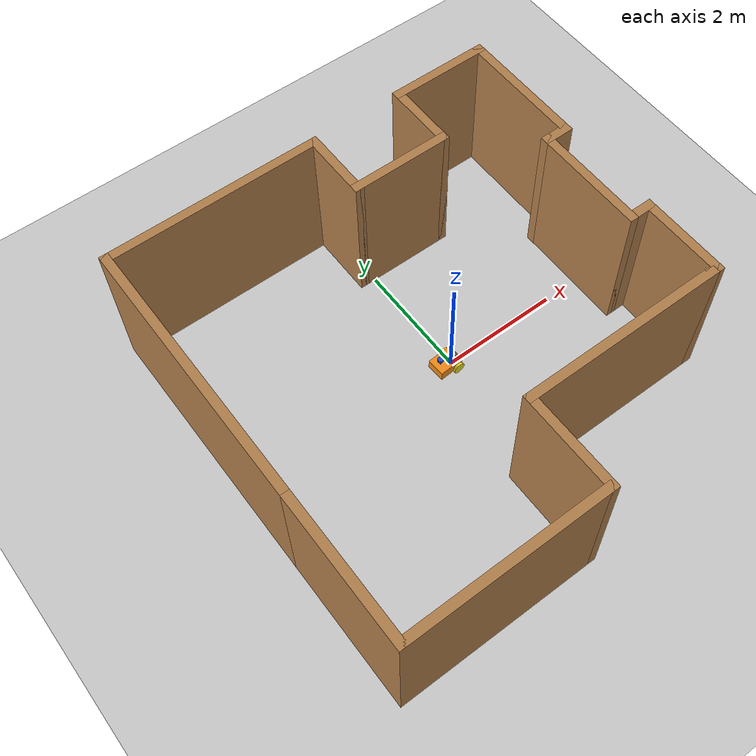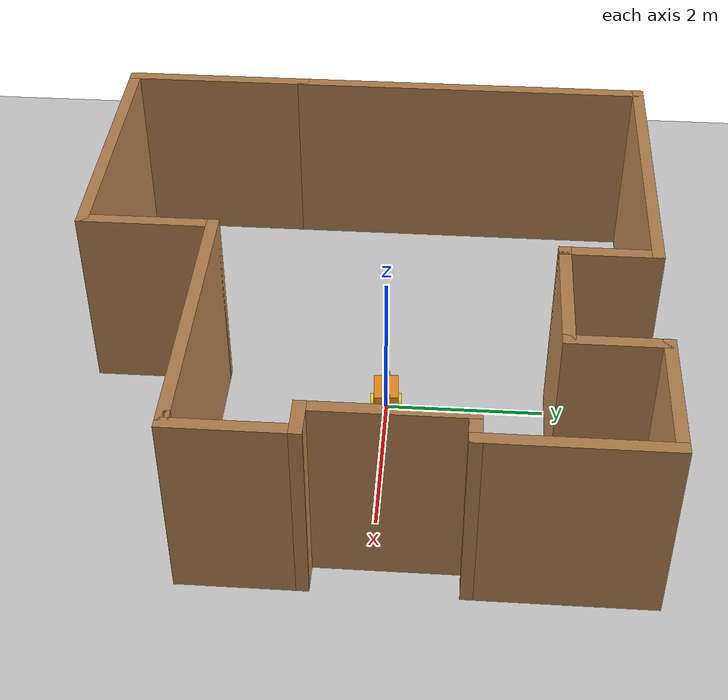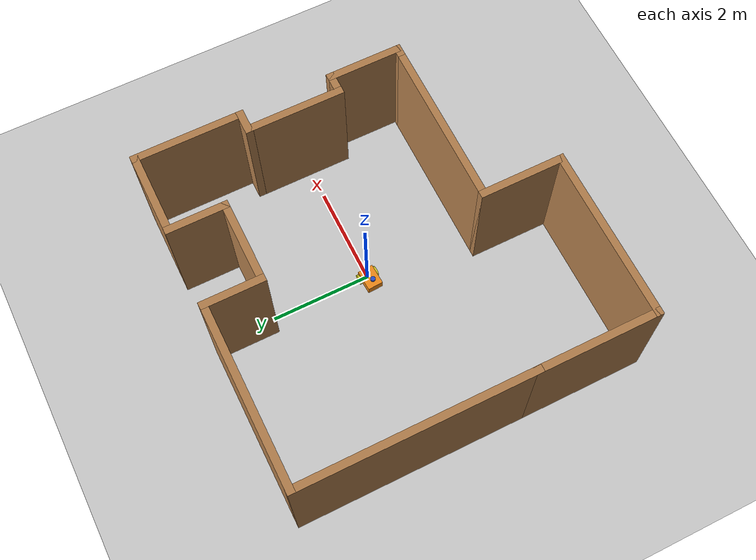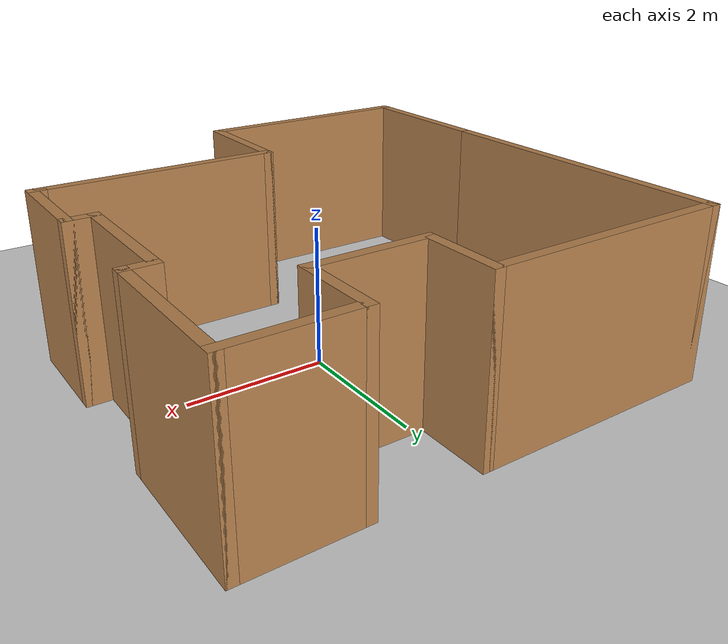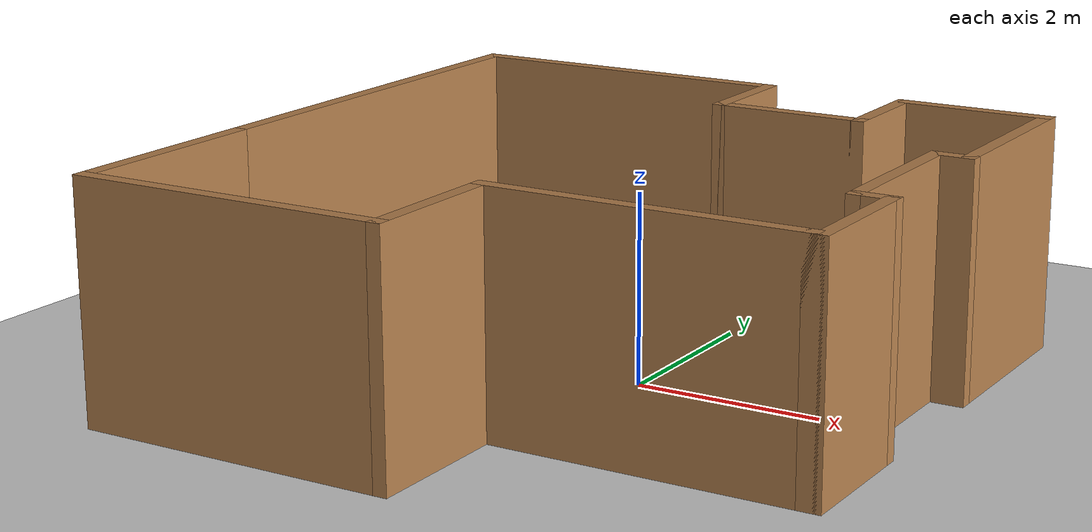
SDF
<sdf version="1.7">
 <world name="default">
  <light name="sun" type="directional">
   <pose>0 0 10 0 -0 0</pose>
   <diffuse>0.8 0.8 0.8 1</diffuse>
   <specular>0.2 0.2 0.2 1</specular>
   <attenuation>
    <range>1000</range>
    <constant>0.9</constant>
    <linear>0.01</linear>
    <quadratic>0.001</quadratic>
   </attenuation>
   <direction>-0.5 0.1 -0.9</direction>
   <spot><inner_angle>0</inner_angle><outer_angle>0</outer_angle><falloff>0</falloff></spot>
  </light>
  <model name="ground_plane">
   <static>1</static>
   <link name="link">
    <collision name="collision">
     <geometry><plane><normal>0 0 1</normal><size>100 100</size></plane></geometry>
     <surface><friction><ode><mu>100</mu><mu2>50</mu2></ode></friction></surface>
    </collision>
    <visual name="visual">
     <cast_shadows>0</cast_shadows>
     <geometry><plane><normal>0 0 1</normal><size>100 100</size></plane></geometry>
     <material>
      <script><uri>file://media/materials/scripts/gazebo.material</uri><name>Gazebo/Grey</name></script>
     </material>
    </visual>
   </link>
  </model>
  <gravity>0 0 -9.8</gravity>
  <magnetic_field>6e-06 2.3e-05 -4.2e-05</magnetic_field>
  <atmosphere type="adiabatic"/>
  <physics type="ode">
   <max_step_size>0.001</max_step_size>
   <real_time_factor>1</real_time_factor>
   <real_time_update_rate>1000</real_time_update_rate>
  </physics>
  <scene><ambient>0.4 0.4 0.4 1</ambient><background>0.7 0.7 0.7 1</background><shadows>1</shadows></scene>
  <spherical_coordinates>
   <surface_model>EARTH_WGS84</surface_model>
   <latitude_deg>0</latitude_deg>
   <longitude_deg>0</longitude_deg>
   <elevation>0</elevation>
   <heading_deg>0</heading_deg>
  </spherical_coordinates>
  <model name="small_building">
   <pose>-0.39971 -0.275303 0 0 -0 0</pose>
   <link name="Wall_0">
    <collision name="Wall_0_Collision">
     <geometry><box><size>4.75 0.15 2.5</size></box></geometry>
     <pose>0 0 1.25 0 -0 0</pose>
    </collision>
    <visual name="Wall_0_Visual">
     <pose>0 0 1.25 0 -0 0</pose>
     <geometry><box><size>4.75 0.15 2.5</size></box></geometry>
     <material>
      <script><uri>file://media/materials/scripts/gazebo.material</uri><name>Gazebo/Wood</name></script>
      <ambient>1 1 1 1</ambient>
     </material>
     <meta><layer>0</layer></meta>
    </visual>
    <pose>-3.4 1.175 0 0 -0 1.5708</pose>
   </link>
   <link name="Wall_1">
    <collision name="Wall_1_Collision">
     <geometry><box><size>3.75 0.15 2.5</size></box></geometry>
     <pose>0 0 1.25 0 -0 0</pose>
    </collision>
    <visual name="Wall_1_Visual">
     <pose>0 0 1.25 0 -0 0</pose>
     <geometry><box><size>3.75 0.15 2.5</size></box></geometry>
     <material>
      <script><uri>file://media/materials/scripts/gazebo.material</uri><name>Gazebo/Wood</name></script>
      <ambient>1 1 1 1</ambient>
     </material>
     <meta><layer>0</layer></meta>
    </visual>
    <pose>-1.6 3.475 0 0 -0 0</pose>
   </link>
   <link name="Wall_10">
    <collision name="Wall_10_Collision">
     <geometry><box><size>0.5 0.15 2.5</size></box></geometry>
     <pose>0 0 1.25 0 -0 0</pose>
    </collision>
    <visual name="Wall_10_Visual">
     <pose>0 0 1.25 0 -0 0</pose>
     <geometry><box><size>0.5 0.15 2.5</size></box></geometry>
     <material>
      <script><uri>file://media/materials/scripts/gazebo.material</uri><name>Gazebo/Wood</name></script>
      <ambient>1 1 1 1</ambient>
     </material>
     <meta><layer>0</layer></meta>
    </visual>
    <pose>3.225 -0.475 0 0 -0 0</pose>
   </link>
   <link name="Wall_12">
    <collision name="Wall_12_Collision">
     <geometry><box><size>2.5 0.15 2.5</size></box></geometry>
     <pose>0 0 1.25 0 -0 0</pose>
    </collision>
    <visual name="Wall_12_Visual">
     <pose>0 0 1.25 0 -0 0</pose>
     <geometry><box><size>2.5 0.15 2.5</size></box></geometry>
     <material>
      <script><uri>file://media/materials/scripts/gazebo.material</uri><name>Gazebo/Wood</name></script>
      <ambient>1 1 1 1</ambient>
     </material>
     <meta><layer>0</layer></meta>
    </visual>
    <pose>-3.4 -2.3 0 0 -0 -1.5708</pose>
   </link>
   <link name="Wall_13">
    <collision name="Wall_13_Collision">
     <geometry><box><size>3.5 0.15 2.5</size></box></geometry>
     <pose>0 0 1.25 0 -0 0</pose>
    </collision>
    <visual name="Wall_13_Visual">
     <pose>0 0 1.25 0 -0 0</pose>
     <geometry><box><size>3.5 0.15 2.5</size></box></geometry>
     <material>
      <script><uri>file://media/materials/scripts/gazebo.material</uri><name>Gazebo/Wood</name></script>
      <ambient>1 1 1 1</ambient>
     </material>
     <meta><layer>0</layer></meta>
    </visual>
    <pose>-1.725 -3.475 0 0 -0 0</pose>
   </link>
   <link name="Wall_14">
    <collision name="Wall_14_Collision">
     <geometry><box><size>1.75 0.15 2.5</size></box></geometry>
     <pose>0 0 1.25 0 -0 0</pose>
    </collision>
    <visual name="Wall_14_Visual">
     <pose>0 0 1.25 0 -0 0</pose>
     <geometry><box><size>1.75 0.15 2.5</size></box></geometry>
     <material>
      <script><uri>file://media/materials/scripts/gazebo.material</uri><name>Gazebo/Wood</name></script>
      <ambient>1 1 1 1</ambient>
     </material>
     <meta><layer>0</layer></meta>
    </visual>
    <pose>-0.05 -2.675 0 0 -0 1.5708</pose>
   </link>
   <link name="Wall_15">
    <collision name="Wall_15_Collision">
     <geometry><box><size>3.5 0.15 2.5</size></box></geometry>
     <pose>0 0 1.25 0 -0 0</pose>
    </collision>
    <visual name="Wall_15_Visual">
     <pose>0 0 1.25 0 -0 0</pose>
     <geometry><box><size>3.5 0.15 2.5</size></box></geometry>
     <material>
      <script><uri>file://media/materials/scripts/gazebo.material</uri><name>Gazebo/Wood</name></script>
      <ambient>1 1 1 1</ambient>
     </material>
     <meta><layer>0</layer></meta>
    </visual>
    <pose>1.625 -1.875 0 0 -0 0</pose>
   </link>
   <link name="Wall_16">
    <collision name="Wall_16_Collision">
     <geometry><box><size>0.25 0.15 2.5</size></box></geometry>
     <pose>0 0 1.25 0 -0 0</pose>
    </collision>
    <visual name="Wall_16_Visual">
     <pose>0 0 1.25 0 -0 0</pose>
     <geometry><box><size>0.25 0.15 2.5</size></box></geometry>
     <material>
      <script><uri>file://media/materials/scripts/gazebo.material</uri><name>Gazebo/Wood</name></script>
      <ambient>1 1 1 1</ambient>
     </material>
     <meta><layer>0</layer></meta>
    </visual>
    <pose>3.35 -1.875 0 0 -0 0</pose>
   </link>
   <link name="Wall_17">
    <collision name="Wall_17_Collision">
     <geometry><box><size>1.55 0.15 2.5</size></box></geometry>
     <pose>0 0 1.25 0 -0 0</pose>
    </collision>
    <visual name="Wall_17_Visual">
     <pose>0 0 1.25 0 -0 0</pose>
     <geometry><box><size>1.55 0.15 2.5</size></box></geometry>
     <material>
      <script><uri>file://media/materials/scripts/gazebo.material</uri><name>Gazebo/Wood</name></script>
      <ambient>1 1 1 1</ambient>
     </material>
     <meta><layer>0</layer></meta>
    </visual>
    <pose>3.4 -1.175 0 0 -0 1.5708</pose>
   </link>
   <link name="Wall_2">
    <collision name="Wall_2_Collision">
     <geometry><box><size>1.25 0.15 2.5</size></box></geometry>
     <pose>0 0 1.25 0 -0 0</pose>
    </collision>
    <visual name="Wall_2_Visual">
     <pose>0 0 1.25 0 -0 0</pose>
     <geometry><box><size>1.25 0.15 2.5</size></box></geometry>
     <material>
      <script><uri>file://media/materials/scripts/gazebo.material</uri><name>Gazebo/Wood</name></script>
      <ambient>1 1 1 1</ambient>
     </material>
     <meta><layer>0</layer></meta>
    </visual>
    <pose>0.2 2.925 0 0 -0 -1.5708</pose>
   </link>
   <link name="Wall_3">
    <collision name="Wall_3_Collision">
     <geometry><box><size>1.75 0.15 2.5</size></box></geometry>
     <pose>0 0 1.25 0 -0 0</pose>
    </collision>
    <visual name="Wall_3_Visual">
     <pose>0 0 1.25 0 -0 0</pose>
     <geometry><box><size>1.75 0.15 2.5</size></box></geometry>
     <material>
      <script><uri>file://media/materials/scripts/gazebo.material</uri><name>Gazebo/Wood</name></script>
      <ambient>1 1 1 1</ambient>
     </material>
     <meta><layer>0</layer></meta>
    </visual>
    <pose>1 2.375 0 0 -0 0</pose>
   </link>
   <link name="Wall_4">
    <collision name="Wall_4_Collision">
     <geometry><box><size>1.25 0.15 2.5</size></box></geometry>
     <pose>0 0 1.25 0 -0 0</pose>
    </collision>
    <visual name="Wall_4_Visual">
     <pose>0 0 1.25 0 -0 0</pose>
     <geometry><box><size>1.25 0.15 2.5</size></box></geometry>
     <material>
      <script><uri>file://media/materials/scripts/gazebo.material</uri><name>Gazebo/Wood</name></script>
      <ambient>1 1 1 1</ambient>
     </material>
     <meta><layer>0</layer></meta>
    </visual>
    <pose>1.8 2.925 0 0 -0 1.5708</pose>
   </link>
   <link name="Wall_5">
    <collision name="Wall_5_Collision">
     <geometry><box><size>1.75 0.15 2.5</size></box></geometry>
     <pose>0 0 1.25 0 -0 0</pose>
    </collision>
    <visual name="Wall_5_Visual">
     <pose>0 0 1.25 0 -0 0</pose>
     <geometry><box><size>1.75 0.15 2.5</size></box></geometry>
     <material>
      <script><uri>file://media/materials/scripts/gazebo.material</uri><name>Gazebo/Wood</name></script>
      <ambient>1 1 1 1</ambient>
     </material>
     <meta><layer>0</layer></meta>
    </visual>
    <pose>2.6 3.475 0 0 -0 0</pose>
   </link>
   <link name="Wall_7">
    <collision name="Wall_7_Collision">
     <geometry><box><size>2.25 0.15 2.5</size></box></geometry>
     <pose>0 0 1.25 0 -0 0</pose>
    </collision>
    <visual name="Wall_7_Visual">
     <pose>0 0 1.25 0 -0 0</pose>
     <geometry><box><size>2.25 0.15 2.5</size></box></geometry>
     <material>
      <script><uri>file://media/materials/scripts/gazebo.material</uri><name>Gazebo/Wood</name></script>
      <ambient>1 1 1 1</ambient>
     </material>
     <meta><layer>0</layer></meta>
    </visual>
    <pose>3.4 2.425 0 0 -0 -1.5708</pose>
   </link>
   <link name="Wall_8">
    <collision name="Wall_8_Collision">
     <geometry><box><size>0.5 0.15 2.5</size></box></geometry>
     <pose>0 0 1.25 0 -0 0</pose>
    </collision>
    <visual name="Wall_8_Visual">
     <pose>0 0 1.25 0 -0 0</pose>
     <geometry><box><size>0.5 0.15 2.5</size></box></geometry>
     <material>
      <script><uri>file://media/materials/scripts/gazebo.material</uri><name>Gazebo/Wood</name></script>
      <ambient>1 1 1 1</ambient>
     </material>
     <meta><layer>0</layer></meta>
    </visual>
    <pose>3.225 1.375 0 0 -0 3.14159</pose>
   </link>
   <link name="Wall_9">
    <collision name="Wall_9_Collision">
     <geometry><box><size>2 0.15 2.5</size></box></geometry>
     <pose>0 0 1.25 0 -0 0</pose>
    </collision>
    <visual name="Wall_9_Visual">
     <pose>0 0 1.25 0 -0 0</pose>
     <geometry><box><size>2 0.15 2.5</size></box></geometry>
     <material>
      <script><uri>file://media/materials/scripts/gazebo.material</uri><name>Gazebo/Wood</name></script>
      <ambient>1 1 1 1</ambient>
     </material>
     <meta><layer>0</layer></meta>
    </visual>
    <pose>3.05 0.45 0 0 -0 -1.5708</pose>
   </link>
   <static>1</static>
  </model>
  <model name="slampibot">
   <link name="base_footprint">
    <inertial>
     <pose>0.005455 0 0.174463 0 -0 0</pose>
     <mass>1.21</mass>
     <inertia>
      <ixx>0.0156346</ixx>
      <ixy>0</ixy>
      <ixz>0.000482955</ixz>
      <iyy>0.0269488</iyy>
      <iyz>0</iyz>
      <izz>0.0276369</izz>
     </inertia>
    </inertial>
    <collision name="base_footprint_fixed_joint_lump__base_link_collision">
     <pose>0 0 0.15 0 -0 0</pose>
     <geometry><box><size>0.42 0.31 0.18</size></box></geometry>
    </collision>
    <collision name="base_footprint_fixed_joint_lump__front_caster_collision_1">
     <pose>-0.14 0 0.06 0 -0 0</pose>
     <geometry><sphere><radius>0.06</radius></sphere></geometry>
     <surface><friction><ode><mu>0.001</mu><mu2>0.001</mu2></ode></friction></surface>
    </collision>
    <collision name="base_footprint_fixed_joint_lump__imu_link_collision_2">
     <pose>0.185 0 0.245 0 -0 0</pose>
     <geometry><box><size>0.05 0.1 0.01</size></box></geometry>
    </collision>
    <collision name="base_footprint_fixed_joint_lump__lidar_link_collision_3">
     <pose>-0.105 0 0.36 0 -0 0</pose>
     <geometry><cylinder><length>0.04</length><radius>0.05</radius></cylinder></geometry>
    </collision>
    <visual name="base_footprint_fixed_joint_lump__base_link_visual">
     <pose>0 0 0.15 0 -0 0</pose>
     <geometry><box><size>0.42 0.31 0.18</size></box></geometry>
     <material>
      <script><name>Gazebo/Orange</name><uri>file://media/materials/scripts/gazebo.material</uri></script>
     </material>
    </visual>
    <visual name="base_footprint_fixed_joint_lump__camera_link_visual_1">
     <pose>0.105 0 0.305 0 -0 0</pose>
     <geometry><box><size>0.01 0.03 0.03</size></box></geometry>
    </visual>
    <visual name="base_footprint_fixed_joint_lump__camera_link_visual_2">
     <pose>0.105 0 0.265 0 -0 0</pose>
     <geometry><cylinder><length>0.05</length><radius>0.002</radius></cylinder></geometry>
    </visual>
    <visual name="base_footprint_fixed_joint_lump__front_caster_visual_3">
     <pose>-0.14 0 0.06 0 -0 0</pose>
     <geometry><sphere><radius>0.06</radius></sphere></geometry>
     <material>
      <script><name>Gazebo/Green</name><uri>file://media/materials/scripts/gazebo.material</uri></script>
     </material>
    </visual>
    <visual name="base_footprint_fixed_joint_lump__imu_link_visual_4">
     <pose>0.185 0 0.245 0 -0 0</pose>
     <geometry><box><size>0.05 0.1 0.01</size></box></geometry>
     <material>
      <script><name>Gazebo/Brown</name><uri>file://media/materials/scripts/gazebo.material</uri></script>
     </material>
    </visual>
    <visual name="base_footprint_fixed_joint_lump__lidar_link_visual_5">
     <pose>-0.105 0 0.36 0 -0 0</pose>
     <geometry><cylinder><length>0.04</length><radius>0.05</radius></cylinder></geometry>
     <material>
      <script><name>Gazebo/Blue</name><uri>file://media/materials/scripts/gazebo.material</uri></script>
     </material>
    </visual>
    <visual name="base_footprint_fixed_joint_lump__lidar_link_visual_6">
     <pose>-0.105 0 0.29 0 -0 0</pose>
     <geometry><cylinder><length>0.1</length><radius>0.01</radius></cylinder></geometry>
     <material>
      <script><name>Gazebo/Blue</name><uri>file://media/materials/scripts/gazebo.material</uri></script>
     </material>
    </visual>
    <sensor name="camera" type="camera">
     <visualize>1</visualize>
     <update_rate>10</update_rate>
     <camera>
      <horizontal_fov>1.089</horizontal_fov>
      <image><format>R8G8B8</format><width>640</width><height>480</height></image>
      <clip><near>0.05</near><far>8</far></clip>
     </camera>
     <plugin name="camera_controller" filename="libgazebo_ros_camera.so">
      <frame_name>camera_optical_link</frame_name>
     </plugin>
     <pose>0.105 0 0.305 0 -0 0</pose>
    </sensor>
    <sensor name="imu_sensor" type="imu">
     <plugin name="imu_plugin" filename="libgazebo_ros_imu_sensor.so">
      <ros><remapping>~/out:=imu</remapping></ros>
      <initial_orientation_as_reference>0</initial_orientation_as_reference>
     </plugin>
     <always_on>1</always_on>
     <update_rate>100</update_rate>
     <visualize>1</visualize>
     <imu>
      <angular_velocity>
       <x>
        <noise type="gaussian">
         <mean>0</mean>
         <stddev>0.0002</stddev>
         <bias_mean>7.5e-06</bias_mean>
         <bias_stddev>8e-07</bias_stddev>
        </noise>
       </x>
       <y>
        <noise type="gaussian">
         <mean>0</mean>
         <stddev>0.0002</stddev>
         <bias_mean>7.5e-06</bias_mean>
         <bias_stddev>8e-07</bias_stddev>
        </noise>
       </y>
       <z>
        <noise type="gaussian">
         <mean>0</mean>
         <stddev>0.0002</stddev>
         <bias_mean>7.5e-06</bias_mean>
         <bias_stddev>8e-07</bias_stddev>
        </noise>
       </z>
      </angular_velocity>
      <linear_acceleration>
       <x>
        <noise type="gaussian">
         <mean>0</mean>
         <stddev>0.017</stddev>
         <bias_mean>0.1</bias_mean>
         <bias_stddev>0.001</bias_stddev>
        </noise>
       </x>
       <y>
        <noise type="gaussian">
         <mean>0</mean>
         <stddev>0.017</stddev>
         <bias_mean>0.1</bias_mean>
         <bias_stddev>0.001</bias_stddev>
        </noise>
       </y>
       <z>
        <noise type="gaussian">
         <mean>0</mean>
         <stddev>0.017</stddev>
         <bias_mean>0.1</bias_mean>
         <bias_stddev>0.001</bias_stddev>
        </noise>
       </z>
      </linear_acceleration>
     </imu>
     <pose>0.185 0 0.245 0 -0 0</pose>
    </sensor>
    <sensor name="lidar" type="ray">
     <visualize>1</visualize>
     <update_rate>10</update_rate>
     <ray>
      <scan>
       <horizontal>
        <samples>360</samples>
        <min_angle>-3.14</min_angle>
        <max_angle>3.14</max_angle>
        <resolution>1</resolution>
       </horizontal>
       <vertical><samples>1</samples><min_angle>0</min_angle><max_angle>0</max_angle></vertical>
      </scan>
      <range><min>0.3</min><max>12</max></range>
     </ray>
     <plugin name="scan" filename="libgazebo_ros_ray_sensor.so">
      <ros><remapping>~/out:=scan</remapping></ros>
      <output_type>sensor_msgs/LaserScan</output_type>
      <frame_name>lidar_link</frame_name>
     </plugin>
     <pose>-0.105 0 0.36 0 -0 0</pose>
    </sensor>
   </link>
   <joint name="wheel_left_joint" type="revolute">
    <pose relative_to="base_footprint">0.12 0.18 0.1 0 -0 0</pose>
    <parent>base_footprint</parent>
    <child>wheel_left_link</child>
    <axis>
     <xyz>0 1 0</xyz>
     <limit><lower>-1e+16</lower><upper>1e+16</upper></limit>
     <dynamics><spring_reference>0</spring_reference><spring_stiffness>0</spring_stiffness></dynamics>
    </axis>
   </joint>
   <link name="wheel_left_link">
    <pose relative_to="wheel_left_joint">0 0 0 0 -0 0</pose>
    <inertial>
     <mass>0.05</mass>
     <inertia>
      <ixx>0.000131667</ixx>
      <ixy>0</ixy>
      <ixz>0</ixz>
      <iyy>0.000131667</iyy>
      <iyz>0</iyz>
      <izz>0.00025</izz>
     </inertia>
    </inertial>
    <collision name="wheel_left_link_collision">
     <pose>0 0 0 1.5708 -0 0</pose>
     <geometry><cylinder><length>0.04</length><radius>0.1</radius></cylinder></geometry>
    </collision>
    <visual name="wheel_left_link_visual">
     <pose>0 0 0 1.5708 -0 0</pose>
     <geometry><cylinder><length>0.04</length><radius>0.1</radius></cylinder></geometry>
     <material>
      <script><name>Gazebo/Yellow</name><uri>file://media/materials/scripts/gazebo.material</uri></script>
     </material>
    </visual>
   </link>
   <joint name="wheel_right_joint" type="revolute">
    <pose relative_to="base_footprint">0.12 -0.18 0.1 0 -0 0</pose>
    <parent>base_footprint</parent>
    <child>wheel_right_link</child>
    <axis>
     <xyz>0 1 0</xyz>
     <limit><lower>-1e+16</lower><upper>1e+16</upper></limit>
     <dynamics><spring_reference>0</spring_reference><spring_stiffness>0</spring_stiffness></dynamics>
    </axis>
   </joint>
   <link name="wheel_right_link">
    <pose relative_to="wheel_right_joint">0 0 0 0 -0 0</pose>
    <inertial>
     <mass>0.05</mass>
     <inertia>
      <ixx>0.000131667</ixx>
      <ixy>0</ixy>
      <ixz>0</ixz>
      <iyy>0.000131667</iyy>
      <iyz>0</iyz>
      <izz>0.00025</izz>
     </inertia>
    </inertial>
    <collision name="wheel_right_link_collision">
     <pose>0 0 0 1.5708 -0 0</pose>
     <geometry><cylinder><length>0.04</length><radius>0.1</radius></cylinder></geometry>
    </collision>
    <visual name="wheel_right_link_visual">
     <pose>0 0 0 1.5708 -0 0</pose>
     <geometry><cylinder><length>0.04</length><radius>0.1</radius></cylinder></geometry>
     <material>
      <script><name>Gazebo/Yellow</name><uri>file://media/materials/scripts/gazebo.material</uri></script>
     </material>
    </visual>
   </link>
   <plugin name="my_gazebo" filename="libgazebo_ros_diff_drive.so">
    <ros><remapping>~/out:=odom</remapping></ros>
    <update_rate>30</update_rate>
    <left_joint>wheel_left_joint</left_joint>
    <right_joint>wheel_right_joint</right_joint>
    <wheel_separation>0.52</wheel_separation>
    <wheel_diameter>0.28</wheel_diameter>
    <max_wheel_torque>200</max_wheel_torque>
    <max_wheel_acceleration>10.0</max_wheel_acceleration>
    <command_topic>cmd_vel</command_topic>
    <odometry_topic>odom</odometry_topic>
    <odometry_frame>odom</odometry_frame>
    <robot_base_frame>base_footprint</robot_base_frame>
    <publish_odom>1</publish_odom>
    <publish_odom_tf>1</publish_odom_tf>
    <publish_wheel_tf>0</publish_wheel_tf>
   </plugin>
   <plugin name="slampibot_joint_state" filename="libgazebo_ros_joint_state_publisher.so">
    <ros><remapping>~/out:=joint_states</remapping></ros>
    <update_rate>30</update_rate>
    <joint_name>wheel_left_joint</joint_name>
    <joint_name>wheel_right_joint</joint_name>
   </plugin>
   <frame name="camera_optical_joint" attached_to="camera_link"/>
   <frame name="camera_optical_link" attached_to="camera_optical_joint"/>
   <frame name="camera_joint" attached_to="base_link"><pose>0.105 0 0.155 0 -0 0</pose></frame>
   <frame name="camera_link" attached_to="camera_joint"/>
   <frame name="caster_joint" attached_to="base_link"><pose>-0.14 0 -0.09 0 -0 0</pose></frame>
   <frame name="front_caster" attached_to="caster_joint"/>
   <frame name="imu_joint" attached_to="base_link"><pose>0.185 0 0.095 0 -0 0</pose></frame>
   <frame name="imu_link" attached_to="imu_joint"/>
   <frame name="lidar_joint" attached_to="base_link"><pose>-0.105 0 0.21 0 -0 0</pose></frame>
   <frame name="lidar_link" attached_to="lidar_joint"/>
   <frame name="base_joint" attached_to="base_footprint"><pose>0 0 0.15 0 -0 0</pose></frame>
   <frame name="base_link" attached_to="base_joint"/>
   <pose>-0.120338 -0.007603 -1e-06 1.5e-05 1e-05 0.059514</pose>
  </model>
 </world>
</sdf>
